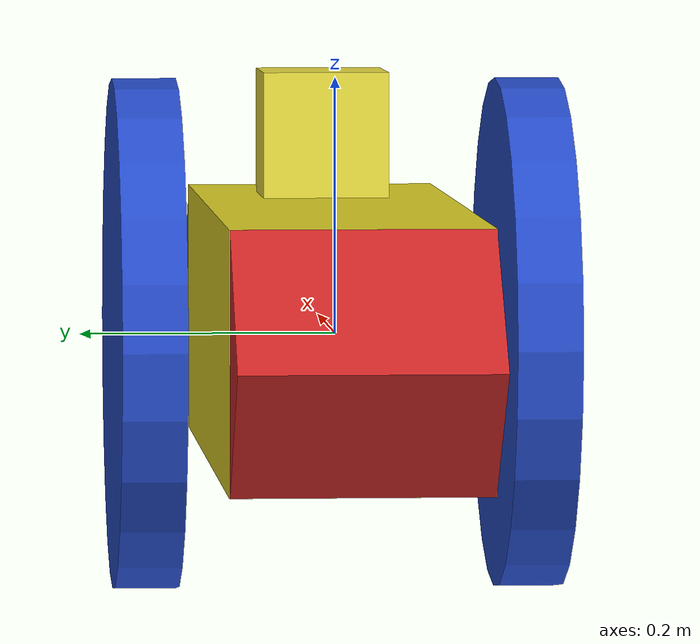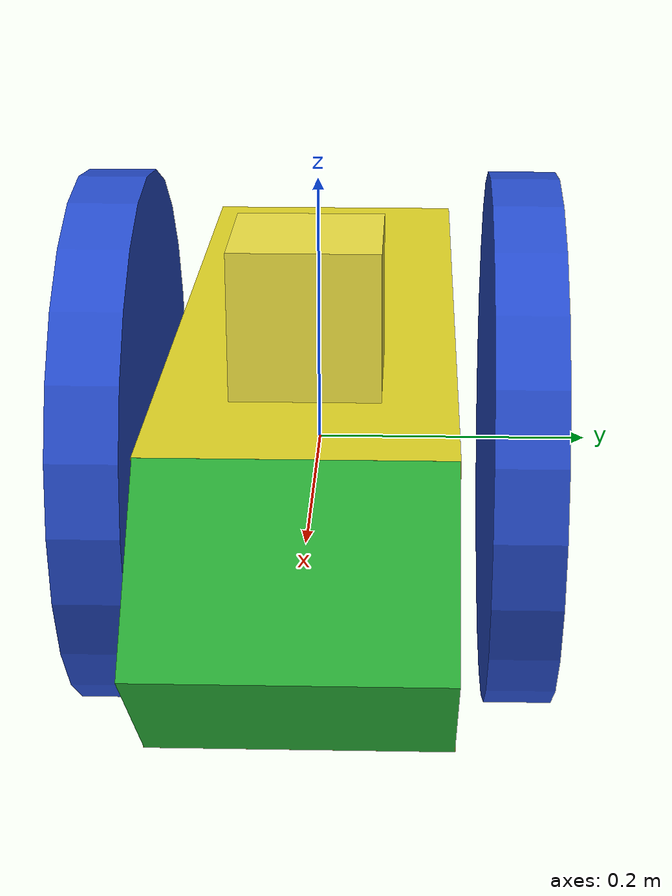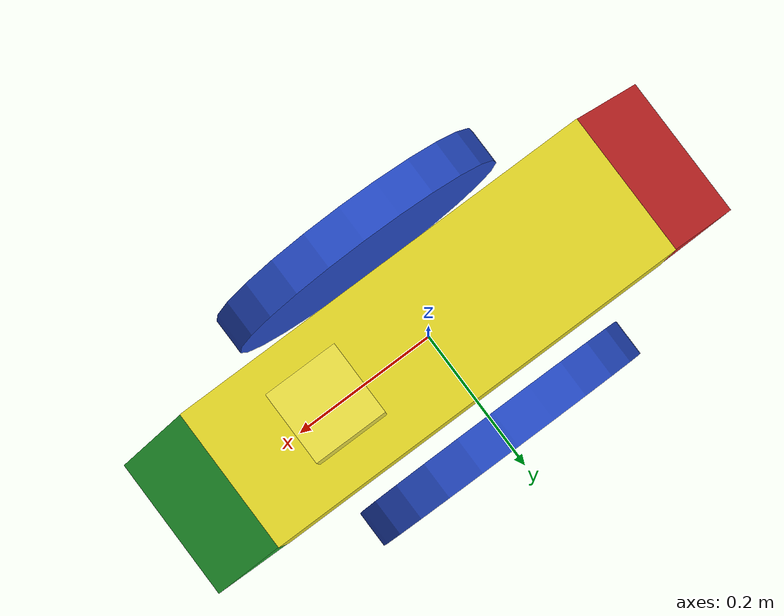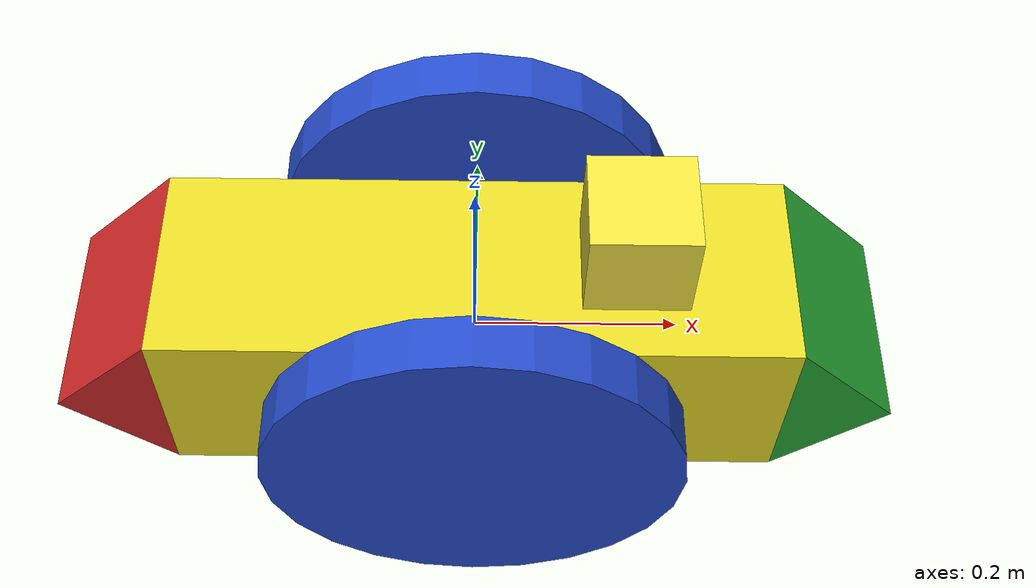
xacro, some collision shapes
<?xml version='1.0'?>

<robot name="my_robot" xmlns:xacro="http://www.ros.org/wiki/xacro">

  <xacro:include filename="$(find my_robot)/urdf/my_robot.gazebo" />

  <link name="robot_footprint"></link>

  <joint name="robot_footprint_joint" type="fixed">
    <origin xyz="0 0 0" rpy="0 0 0" />
    <parent link="robot_footprint"/>
    <child link="chassis" />
  </joint>

  <link name="camera">
    <pose>0 0 0 0 0 0</pose>
    <inertial>
      <mass value="0.1"/>
      <origin xyz="0 0 0" rpy="0 0 0"/>
      <inertia
          ixx="1e-6" ixy="0" ixz="0"
          iyy="1e-6" iyz="0"
          izz="1e-6"
      />
      <box_inertia m="0.1" x="0.05" y="0.05" z="0.05"/>
    </inertial>

    <collision name='camera_collision'>
      <origin xyz="0 0 0" rpy="0 0 0"/>
      <geometry>
        <box size="0.05 0.05 0.05"/>
      </geometry>
    </collision>

    <visual name='camera_visual'>
      <origin xyz="-0.1 0 0" rpy="0 0.7853 0"/>
      <geometry>
        <box size="0.1414 0.199 0.1414"/>
      </geometry>
    </visual>

  </link>

  <joint name="camera_optical_joint" type="fixed">
    <origin xyz="0 0 0" rpy="-1.5707 0 -1.5707"/>
    <parent link="camera"/>
    <child link="camera_link_optical"/>
  </joint>

  <link name="camera_link_optical">
  </link>

  <link name="hokuyo">
    <pose>0 0 0 0 0 0</pose>
    <inertial>
      <mass value="1e-5"/>
      <origin xyz="0 0 0" rpy="0 0 0"/>
      <inertia
          ixx="1e-6" ixy="0" ixz="0"
          iyy="1e-6" iyz="0"
          izz="1e-6"
      />
    </inertial>

    <collision>
      <origin xyz="0 0 0" rpy="0 0 0"/>
      <geometry>
        <box size="0.1 0.1 0.1"/>
      </geometry>
    </collision>

    <visual>
      <origin xyz="0 0 0" rpy="0 0 0"/>
      <geometry>
        <mesh filename="package://my_robot/meshes/hokuyo.dae"/>
      </geometry>
    </visual>

  </link>

  <link name="hokuyo_counter">
    <pose>0 0 0 0 0 0</pose>
    <inertial>
      <mass value="1e-5"/>
      <origin xyz="0 0 0" rpy="0 0 0"/>
      <inertia
          ixx="1e-6" ixy="0" ixz="0"
          iyy="1e-6" iyz="0"
          izz="1e-6"
      />
    </inertial>

    <collision>
      <origin xyz="0 0 0" rpy="0 0 0"/>
      <geometry>
        <box size="0.1 0.1 0.1"/>
      </geometry>
    </collision>
  </link>

  <link name="left_wheel">
    <inertial>
      <mass value="5.0"/>
      <origin xyz="0 0 0" rpy="0 1.5707 1.5707"/>
      <inertia
          ixx="0.1" ixy="0" ixz="0"
          iyy="0.1" iyz="0"
          izz="0.1"
      />
    </inertial>

    <collision name='left_wheel_collision'>
      <origin xyz="0 0 0" rpy="0 1.5707 1.5707"/>
      <geometry>
        <cylinder radius="0.2" length="0.05"/>
      </geometry>
    </collision>

    <visual name='left_wheel_visual'>
      <origin xyz="0 0 0" rpy="0 1.5707 1.5707"/>
      <geometry>
        <cylinder radius="0.2" length="0.05"/>
      </geometry>
    </visual>

  </link>

  <link name="right_wheel">
    <inertial>
      <mass value="5.0"/>
      <origin xyz="0 0 0" rpy="0 1.5707 1.5707"/>
      <inertia
          ixx="0.1" ixy="0" ixz="0"
          iyy="0.1" iyz="0"
          izz="0.1"
      />
    </inertial>

    <collision name='right_wheel_collision'>
      <origin xyz="0 0 0" rpy="0 1.5707 1.5707"/>
      <geometry>
        <cylinder radius="0.2" length="0.05"/>
      </geometry>
    </collision>

    <visual name='right_wheel_visual'>
      <origin xyz="0 0 0" rpy="0 1.5707 1.5707"/>
      <geometry>
        <cylinder radius="0.2" length="0.05"/>
      </geometry>
    </visual>

  </link>

  <link name='spoiler'>
    <inertial>
      <mass value="0.1"/>
      <origin xyz="0 0 0" rpy="0 0 0"/>
      <inertia
          ixx="1e-6" ixy="0" ixz="0"
          iyy="1e-6" iyz="0"
          izz="1e-6"
      />
      <box_inertia m="0.1" x="0.05" y="0.05" z="0.05"/>
    </inertial>

    <visual>
      <origin xyz="0.1 0 0" rpy="0 0.7853 0"/>
      <geometry>
        <box size="0.1414 0.199 0.1414"/>
      </geometry>
    </visual>
  </link>

  <link name='chassis'>
    <pose>0 0 0.1 0 0 0</pose>

    <inertial>
      <mass value="15.0"/>
      <origin xyz="0.0 0 0" rpy=" 0 0 0"/>
      <inertia
          ixx="0.1" ixy="0" ixz="0"
          iyy="0.1" iyz="0"
          izz="0.1"
      />
    </inertial>

    <collision name='collision'>
      <origin xyz="0 0 0" rpy=" 0 0 0"/>
      <geometry>
        <box size=".6 .2 .2"/>
      </geometry>
    </collision>

    <visual name='chassis_visual'>
      <origin xyz="0 0 0" rpy="0 0 0"/>
      <geometry>
        <box size=".6 .2 .2"/>
      </geometry>
    </visual>

    <collision name='back_caster_collision'>
      <origin xyz="-0.3 0 -0.1" rpy=" 0 0 0"/>
      <geometry>
        <sphere radius="0.099"/>
      </geometry>
      <surface>
        <friction>
          <ode>
            <mu>0</mu>
            <mu2>0</mu2>
            <slip1>1.0</slip1>
            <slip2>1.0</slip2>
          </ode>
        </friction>
      </surface>
    </collision>

    <collision name='front_caster_collision'>
      <origin xyz="0.3 0 -0.1" rpy=" 0 0 0"/>
      <geometry>
        <sphere radius="0.099"/>
      </geometry>
      <surface>
        <friction>
          <ode>
            <mu>0</mu>
            <mu2>0</mu2>
            <slip1>1.0</slip1>
            <slip2>1.0</slip2>
          </ode>
        </friction>
      </surface>
    </collision>

  </link>

  <joint type="continuous" name="left_wheel_hinge">
    <origin xyz="0 0.15 0" rpy="0 0 0"/>
    <child link="left_wheel"/>
    <parent link="chassis"/>
    <axis xyz="0 1 0" rpy="0 0 0"/>
    <limit effort="10000" velocity="1000"/>
    <dynamics damping="1.0" friction="1.0"/>
  </joint>

  <joint type="continuous" name="right_wheel_hinge">
    <origin xyz="0 -0.15 0" rpy="0 0 0"/>
    <child link="right_wheel"/>
    <parent link="chassis"/>
    <axis xyz="0 1 0" rpy="0 0 0"/>
    <limit effort="10000" velocity="1000"/>
    <dynamics damping="1.0" friction="1.0"/>
  </joint>

  <joint name="camera_joint" type="fixed">
    <origin xyz="0.4 0 0" rpy="0 0 0" />
    <axis xyz="0 1 0" rpy="0 0 0"/>
    <parent link="chassis"/>
    <child link="camera" />
  </joint>

  <joint name="hokuyo_joint" type="fixed">
    <origin xyz="0.15 0 0.15" rpy="0 0 0" />
    <axis xyz="0 1 0" rpy="0 0 0"/>
    <parent link="chassis"/>
    <child link="hokuyo" />
  </joint>

  <joint name="hokuyo_counter_joint" type="fixed">
    <origin xyz="-0.15 0 0.15" rpy="0 0 0" />
    <axis xyz="0 1 0" rpy="0 0 0"/>
    <parent link="chassis"/>
    <child link="hokuyo_counter" />
  </joint>

  <joint name="spoiler_joint" type="fixed">
    <origin xyz="-0.4 0 0" rpy="0 0 0" />
    <axis xyz="0 1 0" rpy="0 0 0"/>
    <parent link="chassis"/>
    <child link="spoiler" />
  </joint>

  <gazebo reference="left_wheel">
    <material>Gazebo/Blue</material>
  </gazebo>

  <gazebo reference="right_wheel">
    <material>Gazebo/Blue</material>
  </gazebo>

  <gazebo reference="chassis">
    <material>Gazebo/YellowGlow</material>
  </gazebo>

  <gazebo reference="camera">
    <material>Gazebo/Green</material>
  </gazebo>

  <gazebo reference="spoiler">
    <material>Gazebo/RedGlow</material>
  </gazebo>
</robot>
